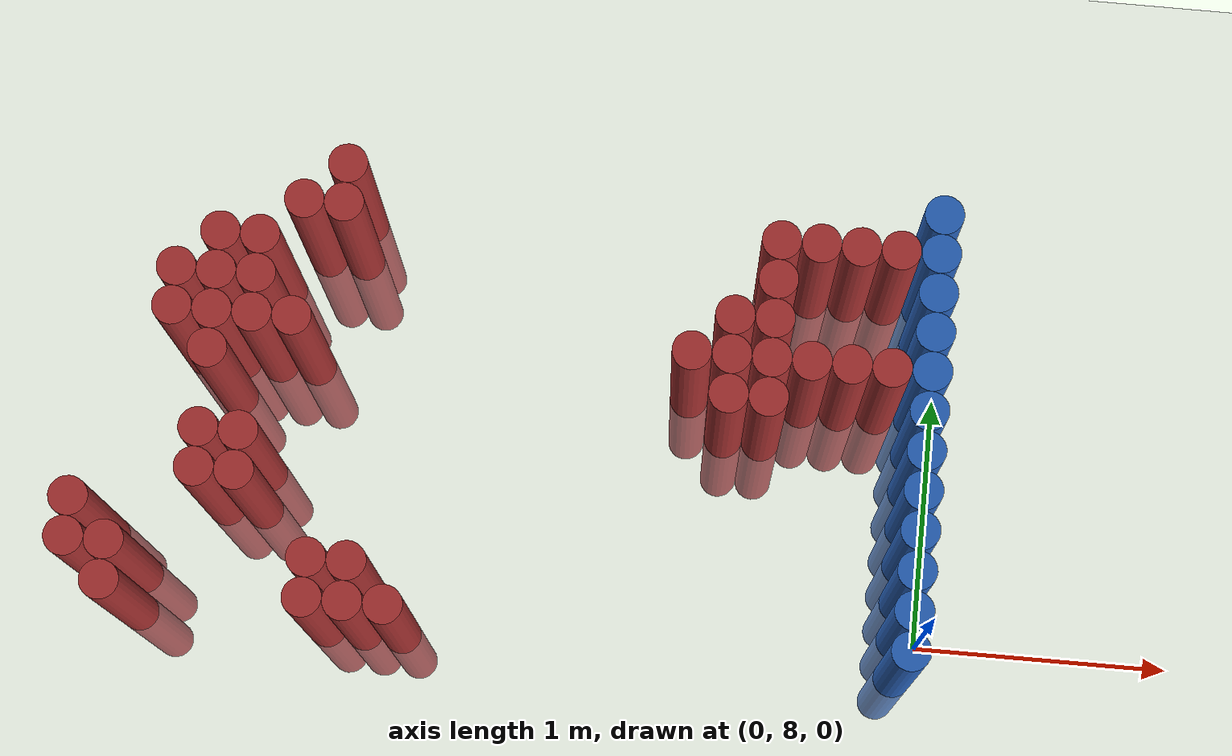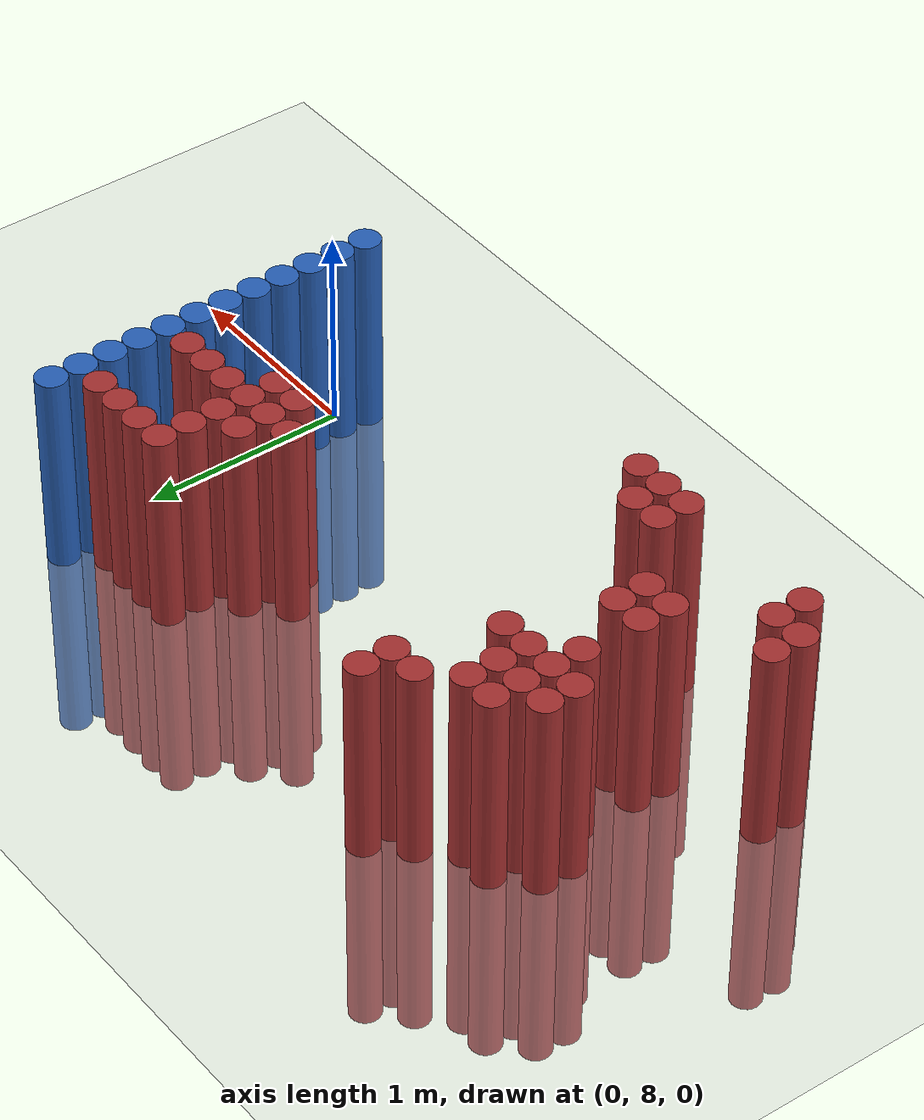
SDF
<sdf version="1.6">
 <world name="default">
  <model name="ground_plane">
   <static>1</static>
   <link name="link">
    <collision name="collision">
     <geometry><plane><normal>0 0 1</normal><size>100 100</size></plane></geometry>
     <surface><friction><ode><mu>100</mu><mu2>50</mu2></ode></friction></surface>
    </collision>
    <visual name="visual">
     <cast_shadows>0</cast_shadows>
     <geometry><plane><normal>0 0 1</normal><size>100 100</size></plane></geometry>
     <material>
      <script><uri>file://media/materials/scripts/gazebo.material</uri><name>Gazebo/Grey</name></script>
     </material>
    </visual>
   </link>
  </model>
  <model name="unit_cylinder_162">
   <static>1</static>
   <pose>-3.225000 8.025000 0.000000 0.000000 0.000000 0.000000</pose>
   <link name="link">
    <inertial>
     <mass>1</mass>
     <inertia><ixx>0.145833</ixx><ixy>0</ixy><ixz>0</ixz><iyy>0.145833</iyy><iyz>0</iyz><izz>0.125</izz></inertia>
    </inertial>
    <collision name="collision">
     <geometry><cylinder><radius>0.075000</radius><length>2</length></cylinder></geometry>
    </collision>
    <visual name="visual">
     <geometry><cylinder><radius>0.075000</radius><length>2</length></cylinder></geometry>
     <material>
      <ambient>0.648000 0.192000 0.192000 1</ambient>
      <diffuse>0.648000 0.192000 0.192000 1</diffuse>
     </material>
     <material>
      <script><name>Gazebo/Grey</name><uri>file://media/materials/scripts/gazebo.material</uri></script>
     </material>
    </visual>
   </link>
  </model>
  <model name="unit_cylinder_163">
   <static>1</static>
   <pose>-3.225000 8.175000 0.000000 0.000000 0.000000 0.000000</pose>
   <link name="link">
    <inertial>
     <mass>1</mass>
     <inertia><ixx>0.145833</ixx><ixy>0</ixy><ixz>0</ixz><iyy>0.145833</iyy><iyz>0</iyz><izz>0.125</izz></inertia>
    </inertial>
    <collision name="collision">
     <geometry><cylinder><radius>0.075000</radius><length>2</length></cylinder></geometry>
    </collision>
    <visual name="visual">
     <geometry><cylinder><radius>0.075000</radius><length>2</length></cylinder></geometry>
     <material>
      <ambient>0.648000 0.192000 0.192000 1</ambient>
      <diffuse>0.648000 0.192000 0.192000 1</diffuse>
     </material>
     <material>
      <script><name>Gazebo/Grey</name><uri>file://media/materials/scripts/gazebo.material</uri></script>
     </material>
    </visual>
   </link>
  </model>
  <model name="unit_cylinder_169">
   <static>1</static>
   <pose>-3.075000 7.875000 0.000000 0.000000 0.000000 0.000000</pose>
   <link name="link">
    <inertial>
     <mass>1</mass>
     <inertia><ixx>0.145833</ixx><ixy>0</ixy><ixz>0</ixz><iyy>0.145833</iyy><iyz>0</iyz><izz>0.125</izz></inertia>
    </inertial>
    <collision name="collision">
     <geometry><cylinder><radius>0.075000</radius><length>2</length></cylinder></geometry>
    </collision>
    <visual name="visual">
     <geometry><cylinder><radius>0.075000</radius><length>2</length></cylinder></geometry>
     <material>
      <ambient>0.648000 0.192000 0.192000 1</ambient>
      <diffuse>0.648000 0.192000 0.192000 1</diffuse>
     </material>
     <material>
      <script><name>Gazebo/Grey</name><uri>file://media/materials/scripts/gazebo.material</uri></script>
     </material>
    </visual>
   </link>
  </model>
  <model name="unit_cylinder_170">
   <static>1</static>
   <pose>-3.075000 8.025000 0.000000 0.000000 0.000000 0.000000</pose>
   <link name="link">
    <inertial>
     <mass>1</mass>
     <inertia><ixx>0.145833</ixx><ixy>0</ixy><ixz>0</ixz><iyy>0.145833</iyy><iyz>0</iyz><izz>0.125</izz></inertia>
    </inertial>
    <collision name="collision">
     <geometry><cylinder><radius>0.075000</radius><length>2</length></cylinder></geometry>
    </collision>
    <visual name="visual">
     <geometry><cylinder><radius>0.075000</radius><length>2</length></cylinder></geometry>
     <material>
      <ambient>0.648000 0.192000 0.192000 1</ambient>
      <diffuse>0.648000 0.192000 0.192000 1</diffuse>
     </material>
     <material>
      <script><name>Gazebo/Grey</name><uri>file://media/materials/scripts/gazebo.material</uri></script>
     </material>
    </visual>
   </link>
  </model>
  <model name="unit_cylinder_175">
   <static>1</static>
   <pose>-2.925000 8.925000 0.000000 0.000000 0.000000 0.000000</pose>
   <link name="link">
    <inertial>
     <mass>1</mass>
     <inertia><ixx>0.145833</ixx><ixy>0</ixy><ixz>0</ixz><iyy>0.145833</iyy><iyz>0</iyz><izz>0.125</izz></inertia>
    </inertial>
    <collision name="collision">
     <geometry><cylinder><radius>0.075000</radius><length>2</length></cylinder></geometry>
    </collision>
    <visual name="visual">
     <geometry><cylinder><radius>0.075000</radius><length>2</length></cylinder></geometry>
     <material>
      <ambient>0.648000 0.192000 0.192000 1</ambient>
      <diffuse>0.648000 0.192000 0.192000 1</diffuse>
     </material>
     <material>
      <script><name>Gazebo/Grey</name><uri>file://media/materials/scripts/gazebo.material</uri></script>
     </material>
    </visual>
   </link>
  </model>
  <model name="unit_cylinder_176">
   <static>1</static>
   <pose>-2.925000 9.075000 0.000000 0.000000 0.000000 0.000000</pose>
   <link name="link">
    <inertial>
     <mass>1</mass>
     <inertia><ixx>0.145833</ixx><ixy>0</ixy><ixz>0</ixz><iyy>0.145833</iyy><iyz>0</iyz><izz>0.125</izz></inertia>
    </inertial>
    <collision name="collision">
     <geometry><cylinder><radius>0.075000</radius><length>2</length></cylinder></geometry>
    </collision>
    <visual name="visual">
     <geometry><cylinder><radius>0.075000</radius><length>2</length></cylinder></geometry>
     <material>
      <ambient>0.648000 0.192000 0.192000 1</ambient>
      <diffuse>0.648000 0.192000 0.192000 1</diffuse>
     </material>
     <material>
      <script><name>Gazebo/Grey</name><uri>file://media/materials/scripts/gazebo.material</uri></script>
     </material>
    </visual>
   </link>
  </model>
  <model name="unit_cylinder_178">
   <static>1</static>
   <pose>-2.775000 8.325000 0.000000 0.000000 0.000000 0.000000</pose>
   <link name="link">
    <inertial>
     <mass>1</mass>
     <inertia><ixx>0.145833</ixx><ixy>0</ixy><ixz>0</ixz><iyy>0.145833</iyy><iyz>0</iyz><izz>0.125</izz></inertia>
    </inertial>
    <collision name="collision">
     <geometry><cylinder><radius>0.075000</radius><length>2</length></cylinder></geometry>
    </collision>
    <visual name="visual">
     <geometry><cylinder><radius>0.075000</radius><length>2</length></cylinder></geometry>
     <material>
      <ambient>0.648000 0.192000 0.192000 1</ambient>
      <diffuse>0.648000 0.192000 0.192000 1</diffuse>
     </material>
     <material>
      <script><name>Gazebo/Grey</name><uri>file://media/materials/scripts/gazebo.material</uri></script>
     </material>
    </visual>
   </link>
  </model>
  <model name="unit_cylinder_179">
   <static>1</static>
   <pose>-2.775000 8.475000 0.000000 0.000000 0.000000 0.000000</pose>
   <link name="link">
    <inertial>
     <mass>1</mass>
     <inertia><ixx>0.145833</ixx><ixy>0</ixy><ixz>0</ixz><iyy>0.145833</iyy><iyz>0</iyz><izz>0.125</izz></inertia>
    </inertial>
    <collision name="collision">
     <geometry><cylinder><radius>0.075000</radius><length>2</length></cylinder></geometry>
    </collision>
    <visual name="visual">
     <geometry><cylinder><radius>0.075000</radius><length>2</length></cylinder></geometry>
     <material>
      <ambient>0.648000 0.192000 0.192000 1</ambient>
      <diffuse>0.648000 0.192000 0.192000 1</diffuse>
     </material>
     <material>
      <script><name>Gazebo/Grey</name><uri>file://media/materials/scripts/gazebo.material</uri></script>
     </material>
    </visual>
   </link>
  </model>
  <model name="unit_cylinder_180">
   <static>1</static>
   <pose>-2.775000 8.775000 0.000000 0.000000 0.000000 0.000000</pose>
   <link name="link">
    <inertial>
     <mass>1</mass>
     <inertia><ixx>0.145833</ixx><ixy>0</ixy><ixz>0</ixz><iyy>0.145833</iyy><iyz>0</iyz><izz>0.125</izz></inertia>
    </inertial>
    <collision name="collision">
     <geometry><cylinder><radius>0.075000</radius><length>2</length></cylinder></geometry>
    </collision>
    <visual name="visual">
     <geometry><cylinder><radius>0.075000</radius><length>2</length></cylinder></geometry>
     <material>
      <ambient>0.648000 0.192000 0.192000 1</ambient>
      <diffuse>0.648000 0.192000 0.192000 1</diffuse>
     </material>
     <material>
      <script><name>Gazebo/Grey</name><uri>file://media/materials/scripts/gazebo.material</uri></script>
     </material>
    </visual>
   </link>
  </model>
  <model name="unit_cylinder_181">
   <static>1</static>
   <pose>-2.775000 8.925000 0.000000 0.000000 0.000000 0.000000</pose>
   <link name="link">
    <inertial>
     <mass>1</mass>
     <inertia><ixx>0.145833</ixx><ixy>0</ixy><ixz>0</ixz><iyy>0.145833</iyy><iyz>0</iyz><izz>0.125</izz></inertia>
    </inertial>
    <collision name="collision">
     <geometry><cylinder><radius>0.075000</radius><length>2</length></cylinder></geometry>
    </collision>
    <visual name="visual">
     <geometry><cylinder><radius>0.075000</radius><length>2</length></cylinder></geometry>
     <material>
      <ambient>0.648000 0.192000 0.192000 1</ambient>
      <diffuse>0.648000 0.192000 0.192000 1</diffuse>
     </material>
     <material>
      <script><name>Gazebo/Grey</name><uri>file://media/materials/scripts/gazebo.material</uri></script>
     </material>
    </visual>
   </link>
  </model>
  <model name="unit_cylinder_182">
   <static>1</static>
   <pose>-2.775000 9.075000 0.000000 0.000000 0.000000 0.000000</pose>
   <link name="link">
    <inertial>
     <mass>1</mass>
     <inertia><ixx>0.145833</ixx><ixy>0</ixy><ixz>0</ixz><iyy>0.145833</iyy><iyz>0</iyz><izz>0.125</izz></inertia>
    </inertial>
    <collision name="collision">
     <geometry><cylinder><radius>0.075000</radius><length>2</length></cylinder></geometry>
    </collision>
    <visual name="visual">
     <geometry><cylinder><radius>0.075000</radius><length>2</length></cylinder></geometry>
     <material>
      <ambient>0.648000 0.192000 0.192000 1</ambient>
      <diffuse>0.648000 0.192000 0.192000 1</diffuse>
     </material>
     <material>
      <script><name>Gazebo/Grey</name><uri>file://media/materials/scripts/gazebo.material</uri></script>
     </material>
    </visual>
   </link>
  </model>
  <model name="unit_cylinder_183">
   <static>1</static>
   <pose>-2.775000 9.225000 0.000000 0.000000 0.000000 0.000000</pose>
   <link name="link">
    <inertial>
     <mass>1</mass>
     <inertia><ixx>0.145833</ixx><ixy>0</ixy><ixz>0</ixz><iyy>0.145833</iyy><iyz>0</iyz><izz>0.125</izz></inertia>
    </inertial>
    <collision name="collision">
     <geometry><cylinder><radius>0.075000</radius><length>2</length></cylinder></geometry>
    </collision>
    <visual name="visual">
     <geometry><cylinder><radius>0.075000</radius><length>2</length></cylinder></geometry>
     <material>
      <ambient>0.648000 0.192000 0.192000 1</ambient>
      <diffuse>0.648000 0.192000 0.192000 1</diffuse>
     </material>
     <material>
      <script><name>Gazebo/Grey</name><uri>file://media/materials/scripts/gazebo.material</uri></script>
     </material>
    </visual>
   </link>
  </model>
  <model name="unit_cylinder_186">
   <static>1</static>
   <pose>-2.625000 8.325000 0.000000 0.000000 0.000000 0.000000</pose>
   <link name="link">
    <inertial>
     <mass>1</mass>
     <inertia><ixx>0.145833</ixx><ixy>0</ixy><ixz>0</ixz><iyy>0.145833</iyy><iyz>0</iyz><izz>0.125</izz></inertia>
    </inertial>
    <collision name="collision">
     <geometry><cylinder><radius>0.075000</radius><length>2</length></cylinder></geometry>
    </collision>
    <visual name="visual">
     <geometry><cylinder><radius>0.075000</radius><length>2</length></cylinder></geometry>
     <material>
      <ambient>0.648000 0.192000 0.192000 1</ambient>
      <diffuse>0.648000 0.192000 0.192000 1</diffuse>
     </material>
     <material>
      <script><name>Gazebo/Grey</name><uri>file://media/materials/scripts/gazebo.material</uri></script>
     </material>
    </visual>
   </link>
  </model>
  <model name="unit_cylinder_187">
   <static>1</static>
   <pose>-2.625000 8.475000 0.000000 0.000000 0.000000 0.000000</pose>
   <link name="link">
    <inertial>
     <mass>1</mass>
     <inertia><ixx>0.145833</ixx><ixy>0</ixy><ixz>0</ixz><iyy>0.145833</iyy><iyz>0</iyz><izz>0.125</izz></inertia>
    </inertial>
    <collision name="collision">
     <geometry><cylinder><radius>0.075000</radius><length>2</length></cylinder></geometry>
    </collision>
    <visual name="visual">
     <geometry><cylinder><radius>0.075000</radius><length>2</length></cylinder></geometry>
     <material>
      <ambient>0.648000 0.192000 0.192000 1</ambient>
      <diffuse>0.648000 0.192000 0.192000 1</diffuse>
     </material>
     <material>
      <script><name>Gazebo/Grey</name><uri>file://media/materials/scripts/gazebo.material</uri></script>
     </material>
    </visual>
   </link>
  </model>
  <model name="unit_cylinder_188">
   <static>1</static>
   <pose>-2.625000 8.925000 0.000000 0.000000 0.000000 0.000000</pose>
   <link name="link">
    <inertial>
     <mass>1</mass>
     <inertia><ixx>0.145833</ixx><ixy>0</ixy><ixz>0</ixz><iyy>0.145833</iyy><iyz>0</iyz><izz>0.125</izz></inertia>
    </inertial>
    <collision name="collision">
     <geometry><cylinder><radius>0.075000</radius><length>2</length></cylinder></geometry>
    </collision>
    <visual name="visual">
     <geometry><cylinder><radius>0.075000</radius><length>2</length></cylinder></geometry>
     <material>
      <ambient>0.648000 0.192000 0.192000 1</ambient>
      <diffuse>0.648000 0.192000 0.192000 1</diffuse>
     </material>
     <material>
      <script><name>Gazebo/Grey</name><uri>file://media/materials/scripts/gazebo.material</uri></script>
     </material>
    </visual>
   </link>
  </model>
  <model name="unit_cylinder_189">
   <static>1</static>
   <pose>-2.625000 9.075000 0.000000 0.000000 0.000000 0.000000</pose>
   <link name="link">
    <inertial>
     <mass>1</mass>
     <inertia><ixx>0.145833</ixx><ixy>0</ixy><ixz>0</ixz><iyy>0.145833</iyy><iyz>0</iyz><izz>0.125</izz></inertia>
    </inertial>
    <collision name="collision">
     <geometry><cylinder><radius>0.075000</radius><length>2</length></cylinder></geometry>
    </collision>
    <visual name="visual">
     <geometry><cylinder><radius>0.075000</radius><length>2</length></cylinder></geometry>
     <material>
      <ambient>0.648000 0.192000 0.192000 1</ambient>
      <diffuse>0.648000 0.192000 0.192000 1</diffuse>
     </material>
     <material>
      <script><name>Gazebo/Grey</name><uri>file://media/materials/scripts/gazebo.material</uri></script>
     </material>
    </visual>
   </link>
  </model>
  <model name="unit_cylinder_190">
   <static>1</static>
   <pose>-2.625000 9.225000 0.000000 0.000000 0.000000 0.000000</pose>
   <link name="link">
    <inertial>
     <mass>1</mass>
     <inertia><ixx>0.145833</ixx><ixy>0</ixy><ixz>0</ixz><iyy>0.145833</iyy><iyz>0</iyz><izz>0.125</izz></inertia>
    </inertial>
    <collision name="collision">
     <geometry><cylinder><radius>0.075000</radius><length>2</length></cylinder></geometry>
    </collision>
    <visual name="visual">
     <geometry><cylinder><radius>0.075000</radius><length>2</length></cylinder></geometry>
     <material>
      <ambient>0.648000 0.192000 0.192000 1</ambient>
      <diffuse>0.648000 0.192000 0.192000 1</diffuse>
     </material>
     <material>
      <script><name>Gazebo/Grey</name><uri>file://media/materials/scripts/gazebo.material</uri></script>
     </material>
    </visual>
   </link>
  </model>
  <model name="unit_cylinder_193">
   <static>1</static>
   <pose>-2.475000 8.925000 0.000000 0.000000 0.000000 0.000000</pose>
   <link name="link">
    <inertial>
     <mass>1</mass>
     <inertia><ixx>0.145833</ixx><ixy>0</ixy><ixz>0</ixz><iyy>0.145833</iyy><iyz>0</iyz><izz>0.125</izz></inertia>
    </inertial>
    <collision name="collision">
     <geometry><cylinder><radius>0.075000</radius><length>2</length></cylinder></geometry>
    </collision>
    <visual name="visual">
     <geometry><cylinder><radius>0.075000</radius><length>2</length></cylinder></geometry>
     <material>
      <ambient>0.648000 0.192000 0.192000 1</ambient>
      <diffuse>0.648000 0.192000 0.192000 1</diffuse>
     </material>
     <material>
      <script><name>Gazebo/Grey</name><uri>file://media/materials/scripts/gazebo.material</uri></script>
     </material>
    </visual>
   </link>
  </model>
  <model name="unit_cylinder_194">
   <static>1</static>
   <pose>-2.475000 9.375000 0.000000 0.000000 0.000000 0.000000</pose>
   <link name="link">
    <inertial>
     <mass>1</mass>
     <inertia><ixx>0.145833</ixx><ixy>0</ixy><ixz>0</ixz><iyy>0.145833</iyy><iyz>0</iyz><izz>0.125</izz></inertia>
    </inertial>
    <collision name="collision">
     <geometry><cylinder><radius>0.075000</radius><length>2</length></cylinder></geometry>
    </collision>
    <visual name="visual">
     <geometry><cylinder><radius>0.075000</radius><length>2</length></cylinder></geometry>
     <material>
      <ambient>0.648000 0.192000 0.192000 1</ambient>
      <diffuse>0.648000 0.192000 0.192000 1</diffuse>
     </material>
     <material>
      <script><name>Gazebo/Grey</name><uri>file://media/materials/scripts/gazebo.material</uri></script>
     </material>
    </visual>
   </link>
  </model>
  <model name="unit_cylinder_197">
   <static>1</static>
   <pose>-2.325000 7.875000 0.000000 0.000000 0.000000 0.000000</pose>
   <link name="link">
    <inertial>
     <mass>1</mass>
     <inertia><ixx>0.145833</ixx><ixy>0</ixy><ixz>0</ixz><iyy>0.145833</iyy><iyz>0</iyz><izz>0.125</izz></inertia>
    </inertial>
    <collision name="collision">
     <geometry><cylinder><radius>0.075000</radius><length>2</length></cylinder></geometry>
    </collision>
    <visual name="visual">
     <geometry><cylinder><radius>0.075000</radius><length>2</length></cylinder></geometry>
     <material>
      <ambient>0.648000 0.192000 0.192000 1</ambient>
      <diffuse>0.648000 0.192000 0.192000 1</diffuse>
     </material>
     <material>
      <script><name>Gazebo/Grey</name><uri>file://media/materials/scripts/gazebo.material</uri></script>
     </material>
    </visual>
   </link>
  </model>
  <model name="unit_cylinder_198">
   <static>1</static>
   <pose>-2.325000 8.025000 0.000000 0.000000 0.000000 0.000000</pose>
   <link name="link">
    <inertial>
     <mass>1</mass>
     <inertia><ixx>0.145833</ixx><ixy>0</ixy><ixz>0</ixz><iyy>0.145833</iyy><iyz>0</iyz><izz>0.125</izz></inertia>
    </inertial>
    <collision name="collision">
     <geometry><cylinder><radius>0.075000</radius><length>2</length></cylinder></geometry>
    </collision>
    <visual name="visual">
     <geometry><cylinder><radius>0.075000</radius><length>2</length></cylinder></geometry>
     <material>
      <ambient>0.648000 0.192000 0.192000 1</ambient>
      <diffuse>0.648000 0.192000 0.192000 1</diffuse>
     </material>
     <material>
      <script><name>Gazebo/Grey</name><uri>file://media/materials/scripts/gazebo.material</uri></script>
     </material>
    </visual>
   </link>
  </model>
  <model name="unit_cylinder_199">
   <static>1</static>
   <pose>-2.325000 9.375000 0.000000 0.000000 0.000000 0.000000</pose>
   <link name="link">
    <inertial>
     <mass>1</mass>
     <inertia><ixx>0.145833</ixx><ixy>0</ixy><ixz>0</ixz><iyy>0.145833</iyy><iyz>0</iyz><izz>0.125</izz></inertia>
    </inertial>
    <collision name="collision">
     <geometry><cylinder><radius>0.075000</radius><length>2</length></cylinder></geometry>
    </collision>
    <visual name="visual">
     <geometry><cylinder><radius>0.075000</radius><length>2</length></cylinder></geometry>
     <material>
      <ambient>0.648000 0.192000 0.192000 1</ambient>
      <diffuse>0.648000 0.192000 0.192000 1</diffuse>
     </material>
     <material>
      <script><name>Gazebo/Grey</name><uri>file://media/materials/scripts/gazebo.material</uri></script>
     </material>
    </visual>
   </link>
  </model>
  <model name="unit_cylinder_200">
   <static>1</static>
   <pose>-2.325000 9.525000 0.000000 0.000000 0.000000 0.000000</pose>
   <link name="link">
    <inertial>
     <mass>1</mass>
     <inertia><ixx>0.145833</ixx><ixy>0</ixy><ixz>0</ixz><iyy>0.145833</iyy><iyz>0</iyz><izz>0.125</izz></inertia>
    </inertial>
    <collision name="collision">
     <geometry><cylinder><radius>0.075000</radius><length>2</length></cylinder></geometry>
    </collision>
    <visual name="visual">
     <geometry><cylinder><radius>0.075000</radius><length>2</length></cylinder></geometry>
     <material>
      <ambient>0.648000 0.192000 0.192000 1</ambient>
      <diffuse>0.648000 0.192000 0.192000 1</diffuse>
     </material>
     <material>
      <script><name>Gazebo/Grey</name><uri>file://media/materials/scripts/gazebo.material</uri></script>
     </material>
    </visual>
   </link>
  </model>
  <model name="unit_cylinder_202">
   <static>1</static>
   <pose>-2.175000 7.875000 0.000000 0.000000 0.000000 0.000000</pose>
   <link name="link">
    <inertial>
     <mass>1</mass>
     <inertia><ixx>0.145833</ixx><ixy>0</ixy><ixz>0</ixz><iyy>0.145833</iyy><iyz>0</iyz><izz>0.125</izz></inertia>
    </inertial>
    <collision name="collision">
     <geometry><cylinder><radius>0.075000</radius><length>2</length></cylinder></geometry>
    </collision>
    <visual name="visual">
     <geometry><cylinder><radius>0.075000</radius><length>2</length></cylinder></geometry>
     <material>
      <ambient>0.648000 0.192000 0.192000 1</ambient>
      <diffuse>0.648000 0.192000 0.192000 1</diffuse>
     </material>
     <material>
      <script><name>Gazebo/Grey</name><uri>file://media/materials/scripts/gazebo.material</uri></script>
     </material>
    </visual>
   </link>
  </model>
  <model name="unit_cylinder_203">
   <static>1</static>
   <pose>-2.175000 8.025000 0.000000 0.000000 0.000000 0.000000</pose>
   <link name="link">
    <inertial>
     <mass>1</mass>
     <inertia><ixx>0.145833</ixx><ixy>0</ixy><ixz>0</ixz><iyy>0.145833</iyy><iyz>0</iyz><izz>0.125</izz></inertia>
    </inertial>
    <collision name="collision">
     <geometry><cylinder><radius>0.075000</radius><length>2</length></cylinder></geometry>
    </collision>
    <visual name="visual">
     <geometry><cylinder><radius>0.075000</radius><length>2</length></cylinder></geometry>
     <material>
      <ambient>0.648000 0.192000 0.192000 1</ambient>
      <diffuse>0.648000 0.192000 0.192000 1</diffuse>
     </material>
     <material>
      <script><name>Gazebo/Grey</name><uri>file://media/materials/scripts/gazebo.material</uri></script>
     </material>
    </visual>
   </link>
  </model>
  <model name="unit_cylinder_204">
   <static>1</static>
   <pose>-2.025000 7.875000 0.000000 0.000000 0.000000 0.000000</pose>
   <link name="link">
    <inertial>
     <mass>1</mass>
     <inertia><ixx>0.145833</ixx><ixy>0</ixy><ixz>0</ixz><iyy>0.145833</iyy><iyz>0</iyz><izz>0.125</izz></inertia>
    </inertial>
    <collision name="collision">
     <geometry><cylinder><radius>0.075000</radius><length>2</length></cylinder></geometry>
    </collision>
    <visual name="visual">
     <geometry><cylinder><radius>0.075000</radius><length>2</length></cylinder></geometry>
     <material>
      <ambient>0.648000 0.192000 0.192000 1</ambient>
      <diffuse>0.648000 0.192000 0.192000 1</diffuse>
     </material>
     <material>
      <script><name>Gazebo/Grey</name><uri>file://media/materials/scripts/gazebo.material</uri></script>
     </material>
    </visual>
   </link>
  </model>
  <model name="unit_cylinder_208">
   <static>1</static>
   <pose>-0.975000 8.925000 0.000000 0.000000 0.000000 0.000000</pose>
   <link name="link">
    <inertial>
     <mass>1</mass>
     <inertia><ixx>0.145833</ixx><ixy>0</ixy><ixz>0</ixz><iyy>0.145833</iyy><iyz>0</iyz><izz>0.125</izz></inertia>
    </inertial>
    <collision name="collision">
     <geometry><cylinder><radius>0.075000</radius><length>2</length></cylinder></geometry>
    </collision>
    <visual name="visual">
     <geometry><cylinder><radius>0.075000</radius><length>2</length></cylinder></geometry>
     <material>
      <ambient>0.648000 0.192000 0.192000 1</ambient>
      <diffuse>0.648000 0.192000 0.192000 1</diffuse>
     </material>
     <material>
      <script><name>Gazebo/Grey</name><uri>file://media/materials/scripts/gazebo.material</uri></script>
     </material>
    </visual>
   </link>
  </model>
  <model name="unit_cylinder_211">
   <static>1</static>
   <pose>-0.825000 8.775000 0.000000 0.000000 0.000000 0.000000</pose>
   <link name="link">
    <inertial>
     <mass>1</mass>
     <inertia><ixx>0.145833</ixx><ixy>0</ixy><ixz>0</ixz><iyy>0.145833</iyy><iyz>0</iyz><izz>0.125</izz></inertia>
    </inertial>
    <collision name="collision">
     <geometry><cylinder><radius>0.075000</radius><length>2</length></cylinder></geometry>
    </collision>
    <visual name="visual">
     <geometry><cylinder><radius>0.075000</radius><length>2</length></cylinder></geometry>
     <material>
      <ambient>0.648000 0.192000 0.192000 1</ambient>
      <diffuse>0.648000 0.192000 0.192000 1</diffuse>
     </material>
     <material>
      <script><name>Gazebo/Grey</name><uri>file://media/materials/scripts/gazebo.material</uri></script>
     </material>
    </visual>
   </link>
  </model>
  <model name="unit_cylinder_212">
   <static>1</static>
   <pose>-0.825000 8.925000 0.000000 0.000000 0.000000 0.000000</pose>
   <link name="link">
    <inertial>
     <mass>1</mass>
     <inertia><ixx>0.145833</ixx><ixy>0</ixy><ixz>0</ixz><iyy>0.145833</iyy><iyz>0</iyz><izz>0.125</izz></inertia>
    </inertial>
    <collision name="collision">
     <geometry><cylinder><radius>0.075000</radius><length>2</length></cylinder></geometry>
    </collision>
    <visual name="visual">
     <geometry><cylinder><radius>0.075000</radius><length>2</length></cylinder></geometry>
     <material>
      <ambient>0.648000 0.192000 0.192000 1</ambient>
      <diffuse>0.648000 0.192000 0.192000 1</diffuse>
     </material>
     <material>
      <script><name>Gazebo/Grey</name><uri>file://media/materials/scripts/gazebo.material</uri></script>
     </material>
    </visual>
   </link>
  </model>
  <model name="unit_cylinder_213">
   <static>1</static>
   <pose>-0.825000 9.075000 0.000000 0.000000 0.000000 0.000000</pose>
   <link name="link">
    <inertial>
     <mass>1</mass>
     <inertia><ixx>0.145833</ixx><ixy>0</ixy><ixz>0</ixz><iyy>0.145833</iyy><iyz>0</iyz><izz>0.125</izz></inertia>
    </inertial>
    <collision name="collision">
     <geometry><cylinder><radius>0.075000</radius><length>2</length></cylinder></geometry>
    </collision>
    <visual name="visual">
     <geometry><cylinder><radius>0.075000</radius><length>2</length></cylinder></geometry>
     <material>
      <ambient>0.648000 0.192000 0.192000 1</ambient>
      <diffuse>0.648000 0.192000 0.192000 1</diffuse>
     </material>
     <material>
      <script><name>Gazebo/Grey</name><uri>file://media/materials/scripts/gazebo.material</uri></script>
     </material>
    </visual>
   </link>
  </model>
  <model name="unit_cylinder_214">
   <static>1</static>
   <pose>-0.675000 8.775000 0.000000 0.000000 0.000000 0.000000</pose>
   <link name="link">
    <inertial>
     <mass>1</mass>
     <inertia><ixx>0.145833</ixx><ixy>0</ixy><ixz>0</ixz><iyy>0.145833</iyy><iyz>0</iyz><izz>0.125</izz></inertia>
    </inertial>
    <collision name="collision">
     <geometry><cylinder><radius>0.075000</radius><length>2</length></cylinder></geometry>
    </collision>
    <visual name="visual">
     <geometry><cylinder><radius>0.075000</radius><length>2</length></cylinder></geometry>
     <material>
      <ambient>0.648000 0.192000 0.192000 1</ambient>
      <diffuse>0.648000 0.192000 0.192000 1</diffuse>
     </material>
     <material>
      <script><name>Gazebo/Grey</name><uri>file://media/materials/scripts/gazebo.material</uri></script>
     </material>
    </visual>
   </link>
  </model>
  <model name="unit_cylinder_215">
   <static>1</static>
   <pose>-0.675000 8.925000 0.000000 0.000000 0.000000 0.000000</pose>
   <link name="link">
    <inertial>
     <mass>1</mass>
     <inertia><ixx>0.145833</ixx><ixy>0</ixy><ixz>0</ixz><iyy>0.145833</iyy><iyz>0</iyz><izz>0.125</izz></inertia>
    </inertial>
    <collision name="collision">
     <geometry><cylinder><radius>0.075000</radius><length>2</length></cylinder></geometry>
    </collision>
    <visual name="visual">
     <geometry><cylinder><radius>0.075000</radius><length>2</length></cylinder></geometry>
     <material>
      <ambient>0.648000 0.192000 0.192000 1</ambient>
      <diffuse>0.648000 0.192000 0.192000 1</diffuse>
     </material>
     <material>
      <script><name>Gazebo/Grey</name><uri>file://media/materials/scripts/gazebo.material</uri></script>
     </material>
    </visual>
   </link>
  </model>
  <model name="unit_cylinder_216">
   <static>1</static>
   <pose>-0.675000 9.075000 0.000000 0.000000 0.000000 0.000000</pose>
   <link name="link">
    <inertial>
     <mass>1</mass>
     <inertia><ixx>0.145833</ixx><ixy>0</ixy><ixz>0</ixz><iyy>0.145833</iyy><iyz>0</iyz><izz>0.125</izz></inertia>
    </inertial>
    <collision name="collision">
     <geometry><cylinder><radius>0.075000</radius><length>2</length></cylinder></geometry>
    </collision>
    <visual name="visual">
     <geometry><cylinder><radius>0.075000</radius><length>2</length></cylinder></geometry>
     <material>
      <ambient>0.648000 0.192000 0.192000 1</ambient>
      <diffuse>0.648000 0.192000 0.192000 1</diffuse>
     </material>
     <material>
      <script><name>Gazebo/Grey</name><uri>file://media/materials/scripts/gazebo.material</uri></script>
     </material>
    </visual>
   </link>
  </model>
  <model name="unit_cylinder_217">
   <static>1</static>
   <pose>-0.675000 9.225000 0.000000 0.000000 0.000000 0.000000</pose>
   <link name="link">
    <inertial>
     <mass>1</mass>
     <inertia><ixx>0.145833</ixx><ixy>0</ixy><ixz>0</ixz><iyy>0.145833</iyy><iyz>0</iyz><izz>0.125</izz></inertia>
    </inertial>
    <collision name="collision">
     <geometry><cylinder><radius>0.075000</radius><length>2</length></cylinder></geometry>
    </collision>
    <visual name="visual">
     <geometry><cylinder><radius>0.075000</radius><length>2</length></cylinder></geometry>
     <material>
      <ambient>0.648000 0.192000 0.192000 1</ambient>
      <diffuse>0.648000 0.192000 0.192000 1</diffuse>
     </material>
     <material>
      <script><name>Gazebo/Grey</name><uri>file://media/materials/scripts/gazebo.material</uri></script>
     </material>
    </visual>
   </link>
  </model>
  <model name="unit_cylinder_218">
   <static>1</static>
   <pose>-0.675000 9.375000 0.000000 0.000000 0.000000 0.000000</pose>
   <link name="link">
    <inertial>
     <mass>1</mass>
     <inertia><ixx>0.145833</ixx><ixy>0</ixy><ixz>0</ixz><iyy>0.145833</iyy><iyz>0</iyz><izz>0.125</izz></inertia>
    </inertial>
    <collision name="collision">
     <geometry><cylinder><radius>0.075000</radius><length>2</length></cylinder></geometry>
    </collision>
    <visual name="visual">
     <geometry><cylinder><radius>0.075000</radius><length>2</length></cylinder></geometry>
     <material>
      <ambient>0.648000 0.192000 0.192000 1</ambient>
      <diffuse>0.648000 0.192000 0.192000 1</diffuse>
     </material>
     <material>
      <script><name>Gazebo/Grey</name><uri>file://media/materials/scripts/gazebo.material</uri></script>
     </material>
    </visual>
   </link>
  </model>
  <model name="unit_cylinder_219">
   <static>1</static>
   <pose>-0.525000 8.925000 0.000000 0.000000 0.000000 0.000000</pose>
   <link name="link">
    <inertial>
     <mass>1</mass>
     <inertia><ixx>0.145833</ixx><ixy>0</ixy><ixz>0</ixz><iyy>0.145833</iyy><iyz>0</iyz><izz>0.125</izz></inertia>
    </inertial>
    <collision name="collision">
     <geometry><cylinder><radius>0.075000</radius><length>2</length></cylinder></geometry>
    </collision>
    <visual name="visual">
     <geometry><cylinder><radius>0.075000</radius><length>2</length></cylinder></geometry>
     <material>
      <ambient>0.648000 0.192000 0.192000 1</ambient>
      <diffuse>0.648000 0.192000 0.192000 1</diffuse>
     </material>
     <material>
      <script><name>Gazebo/Grey</name><uri>file://media/materials/scripts/gazebo.material</uri></script>
     </material>
    </visual>
   </link>
  </model>
  <model name="unit_cylinder_220">
   <static>1</static>
   <pose>-0.525000 9.375000 0.000000 0.000000 0.000000 0.000000</pose>
   <link name="link">
    <inertial>
     <mass>1</mass>
     <inertia><ixx>0.145833</ixx><ixy>0</ixy><ixz>0</ixz><iyy>0.145833</iyy><iyz>0</iyz><izz>0.125</izz></inertia>
    </inertial>
    <collision name="collision">
     <geometry><cylinder><radius>0.075000</radius><length>2</length></cylinder></geometry>
    </collision>
    <visual name="visual">
     <geometry><cylinder><radius>0.075000</radius><length>2</length></cylinder></geometry>
     <material>
      <ambient>0.648000 0.192000 0.192000 1</ambient>
      <diffuse>0.648000 0.192000 0.192000 1</diffuse>
     </material>
     <material>
      <script><name>Gazebo/Grey</name><uri>file://media/materials/scripts/gazebo.material</uri></script>
     </material>
    </visual>
   </link>
  </model>
  <model name="unit_cylinder_222">
   <static>1</static>
   <pose>-0.375000 8.925000 0.000000 0.000000 0.000000 0.000000</pose>
   <link name="link">
    <inertial>
     <mass>1</mass>
     <inertia><ixx>0.145833</ixx><ixy>0</ixy><ixz>0</ixz><iyy>0.145833</iyy><iyz>0</iyz><izz>0.125</izz></inertia>
    </inertial>
    <collision name="collision">
     <geometry><cylinder><radius>0.075000</radius><length>2</length></cylinder></geometry>
    </collision>
    <visual name="visual">
     <geometry><cylinder><radius>0.075000</radius><length>2</length></cylinder></geometry>
     <material>
      <ambient>0.648000 0.192000 0.192000 1</ambient>
      <diffuse>0.648000 0.192000 0.192000 1</diffuse>
     </material>
     <material>
      <script><name>Gazebo/Grey</name><uri>file://media/materials/scripts/gazebo.material</uri></script>
     </material>
    </visual>
   </link>
  </model>
  <model name="unit_cylinder_223">
   <static>1</static>
   <pose>-0.375000 9.375000 0.000000 0.000000 0.000000 0.000000</pose>
   <link name="link">
    <inertial>
     <mass>1</mass>
     <inertia><ixx>0.145833</ixx><ixy>0</ixy><ixz>0</ixz><iyy>0.145833</iyy><iyz>0</iyz><izz>0.125</izz></inertia>
    </inertial>
    <collision name="collision">
     <geometry><cylinder><radius>0.075000</radius><length>2</length></cylinder></geometry>
    </collision>
    <visual name="visual">
     <geometry><cylinder><radius>0.075000</radius><length>2</length></cylinder></geometry>
     <material>
      <ambient>0.648000 0.192000 0.192000 1</ambient>
      <diffuse>0.648000 0.192000 0.192000 1</diffuse>
     </material>
     <material>
      <script><name>Gazebo/Grey</name><uri>file://media/materials/scripts/gazebo.material</uri></script>
     </material>
    </visual>
   </link>
  </model>
  <model name="unit_cylinder_232">
   <static>1</static>
   <pose>-0.225000 8.925000 0.000000 0.000000 0.000000 0.000000</pose>
   <link name="link">
    <inertial>
     <mass>1</mass>
     <inertia><ixx>0.145833</ixx><ixy>0</ixy><ixz>0</ixz><iyy>0.145833</iyy><iyz>0</iyz><izz>0.125</izz></inertia>
    </inertial>
    <collision name="collision">
     <geometry><cylinder><radius>0.075000</radius><length>2</length></cylinder></geometry>
    </collision>
    <visual name="visual">
     <geometry><cylinder><radius>0.075000</radius><length>2</length></cylinder></geometry>
     <material>
      <ambient>0.648000 0.192000 0.192000 1</ambient>
      <diffuse>0.648000 0.192000 0.192000 1</diffuse>
     </material>
     <material>
      <script><name>Gazebo/Grey</name><uri>file://media/materials/scripts/gazebo.material</uri></script>
     </material>
    </visual>
   </link>
  </model>
  <model name="unit_cylinder_233">
   <static>1</static>
   <pose>-0.225000 9.375000 0.000000 0.000000 0.000000 0.000000</pose>
   <link name="link">
    <inertial>
     <mass>1</mass>
     <inertia><ixx>0.145833</ixx><ixy>0</ixy><ixz>0</ixz><iyy>0.145833</iyy><iyz>0</iyz><izz>0.125</izz></inertia>
    </inertial>
    <collision name="collision">
     <geometry><cylinder><radius>0.075000</radius><length>2</length></cylinder></geometry>
    </collision>
    <visual name="visual">
     <geometry><cylinder><radius>0.075000</radius><length>2</length></cylinder></geometry>
     <material>
      <ambient>0.648000 0.192000 0.192000 1</ambient>
      <diffuse>0.648000 0.192000 0.192000 1</diffuse>
     </material>
     <material>
      <script><name>Gazebo/Grey</name><uri>file://media/materials/scripts/gazebo.material</uri></script>
     </material>
    </visual>
   </link>
  </model>
  <model name="unit_cylinder_252">
   <static>1</static>
   <pose>-0.075000 7.875000 0.000000 0.000000 0.000000 0.000000</pose>
   <link name="link">
    <inertial>
     <mass>1</mass>
     <inertia><ixx>0.145833</ixx><ixy>0</ixy><ixz>0</ixz><iyy>0.145833</iyy><iyz>0</iyz><izz>0.125</izz></inertia>
    </inertial>
    <collision name="collision">
     <geometry><cylinder><radius>0.075000</radius><length>2</length></cylinder></geometry>
    </collision>
    <visual name="visual">
     <geometry><cylinder><radius>0.075000</radius><length>2</length></cylinder></geometry>
     <material>
      <ambient>0.152000 0.379000 0.720000 1</ambient>
      <diffuse>0.152000 0.379000 0.720000 1</diffuse>
     </material>
     <material>
      <script><name>Gazebo/Grey</name><uri>file://media/materials/scripts/gazebo.material</uri></script>
     </material>
    </visual>
   </link>
  </model>
  <model name="unit_cylinder_253">
   <static>1</static>
   <pose>-0.075000 8.025000 0.000000 0.000000 0.000000 0.000000</pose>
   <link name="link">
    <inertial>
     <mass>1</mass>
     <inertia><ixx>0.145833</ixx><ixy>0</ixy><ixz>0</ixz><iyy>0.145833</iyy><iyz>0</iyz><izz>0.125</izz></inertia>
    </inertial>
    <collision name="collision">
     <geometry><cylinder><radius>0.075000</radius><length>2</length></cylinder></geometry>
    </collision>
    <visual name="visual">
     <geometry><cylinder><radius>0.075000</radius><length>2</length></cylinder></geometry>
     <material>
      <ambient>0.152000 0.379000 0.720000 1</ambient>
      <diffuse>0.152000 0.379000 0.720000 1</diffuse>
     </material>
     <material>
      <script><name>Gazebo/Grey</name><uri>file://media/materials/scripts/gazebo.material</uri></script>
     </material>
    </visual>
   </link>
  </model>
  <model name="unit_cylinder_254">
   <static>1</static>
   <pose>-0.075000 8.175000 0.000000 0.000000 0.000000 0.000000</pose>
   <link name="link">
    <inertial>
     <mass>1</mass>
     <inertia><ixx>0.145833</ixx><ixy>0</ixy><ixz>0</ixz><iyy>0.145833</iyy><iyz>0</iyz><izz>0.125</izz></inertia>
    </inertial>
    <collision name="collision">
     <geometry><cylinder><radius>0.075000</radius><length>2</length></cylinder></geometry>
    </collision>
    <visual name="visual">
     <geometry><cylinder><radius>0.075000</radius><length>2</length></cylinder></geometry>
     <material>
      <ambient>0.152000 0.379000 0.720000 1</ambient>
      <diffuse>0.152000 0.379000 0.720000 1</diffuse>
     </material>
     <material>
      <script><name>Gazebo/Grey</name><uri>file://media/materials/scripts/gazebo.material</uri></script>
     </material>
    </visual>
   </link>
  </model>
  <model name="unit_cylinder_255">
   <static>1</static>
   <pose>-0.075000 8.325000 0.000000 0.000000 0.000000 0.000000</pose>
   <link name="link">
    <inertial>
     <mass>1</mass>
     <inertia><ixx>0.145833</ixx><ixy>0</ixy><ixz>0</ixz><iyy>0.145833</iyy><iyz>0</iyz><izz>0.125</izz></inertia>
    </inertial>
    <collision name="collision">
     <geometry><cylinder><radius>0.075000</radius><length>2</length></cylinder></geometry>
    </collision>
    <visual name="visual">
     <geometry><cylinder><radius>0.075000</radius><length>2</length></cylinder></geometry>
     <material>
      <ambient>0.152000 0.379000 0.720000 1</ambient>
      <diffuse>0.152000 0.379000 0.720000 1</diffuse>
     </material>
     <material>
      <script><name>Gazebo/Grey</name><uri>file://media/materials/scripts/gazebo.material</uri></script>
     </material>
    </visual>
   </link>
  </model>
  <model name="unit_cylinder_256">
   <static>1</static>
   <pose>-0.075000 8.475000 0.000000 0.000000 0.000000 0.000000</pose>
   <link name="link">
    <inertial>
     <mass>1</mass>
     <inertia><ixx>0.145833</ixx><ixy>0</ixy><ixz>0</ixz><iyy>0.145833</iyy><iyz>0</iyz><izz>0.125</izz></inertia>
    </inertial>
    <collision name="collision">
     <geometry><cylinder><radius>0.075000</radius><length>2</length></cylinder></geometry>
    </collision>
    <visual name="visual">
     <geometry><cylinder><radius>0.075000</radius><length>2</length></cylinder></geometry>
     <material>
      <ambient>0.152000 0.379000 0.720000 1</ambient>
      <diffuse>0.152000 0.379000 0.720000 1</diffuse>
     </material>
     <material>
      <script><name>Gazebo/Grey</name><uri>file://media/materials/scripts/gazebo.material</uri></script>
     </material>
    </visual>
   </link>
  </model>
  <model name="unit_cylinder_257">
   <static>1</static>
   <pose>-0.075000 8.625000 0.000000 0.000000 0.000000 0.000000</pose>
   <link name="link">
    <inertial>
     <mass>1</mass>
     <inertia><ixx>0.145833</ixx><ixy>0</ixy><ixz>0</ixz><iyy>0.145833</iyy><iyz>0</iyz><izz>0.125</izz></inertia>
    </inertial>
    <collision name="collision">
     <geometry><cylinder><radius>0.075000</radius><length>2</length></cylinder></geometry>
    </collision>
    <visual name="visual">
     <geometry><cylinder><radius>0.075000</radius><length>2</length></cylinder></geometry>
     <material>
      <ambient>0.152000 0.379000 0.720000 1</ambient>
      <diffuse>0.152000 0.379000 0.720000 1</diffuse>
     </material>
     <material>
      <script><name>Gazebo/Grey</name><uri>file://media/materials/scripts/gazebo.material</uri></script>
     </material>
    </visual>
   </link>
  </model>
  <model name="unit_cylinder_258">
   <static>1</static>
   <pose>-0.075000 8.775000 0.000000 0.000000 0.000000 0.000000</pose>
   <link name="link">
    <inertial>
     <mass>1</mass>
     <inertia><ixx>0.145833</ixx><ixy>0</ixy><ixz>0</ixz><iyy>0.145833</iyy><iyz>0</iyz><izz>0.125</izz></inertia>
    </inertial>
    <collision name="collision">
     <geometry><cylinder><radius>0.075000</radius><length>2</length></cylinder></geometry>
    </collision>
    <visual name="visual">
     <geometry><cylinder><radius>0.075000</radius><length>2</length></cylinder></geometry>
     <material>
      <ambient>0.152000 0.379000 0.720000 1</ambient>
      <diffuse>0.152000 0.379000 0.720000 1</diffuse>
     </material>
     <material>
      <script><name>Gazebo/Grey</name><uri>file://media/materials/scripts/gazebo.material</uri></script>
     </material>
    </visual>
   </link>
  </model>
  <model name="unit_cylinder_259">
   <static>1</static>
   <pose>-0.075000 8.925000 0.000000 0.000000 0.000000 0.000000</pose>
   <link name="link">
    <inertial>
     <mass>1</mass>
     <inertia><ixx>0.145833</ixx><ixy>0</ixy><ixz>0</ixz><iyy>0.145833</iyy><iyz>0</iyz><izz>0.125</izz></inertia>
    </inertial>
    <collision name="collision">
     <geometry><cylinder><radius>0.075000</radius><length>2</length></cylinder></geometry>
    </collision>
    <visual name="visual">
     <geometry><cylinder><radius>0.075000</radius><length>2</length></cylinder></geometry>
     <material>
      <ambient>0.152000 0.379000 0.720000 1</ambient>
      <diffuse>0.152000 0.379000 0.720000 1</diffuse>
     </material>
     <material>
      <script><name>Gazebo/Grey</name><uri>file://media/materials/scripts/gazebo.material</uri></script>
     </material>
    </visual>
   </link>
  </model>
  <model name="unit_cylinder_260">
   <static>1</static>
   <pose>-0.075000 9.075000 0.000000 0.000000 0.000000 0.000000</pose>
   <link name="link">
    <inertial>
     <mass>1</mass>
     <inertia><ixx>0.145833</ixx><ixy>0</ixy><ixz>0</ixz><iyy>0.145833</iyy><iyz>0</iyz><izz>0.125</izz></inertia>
    </inertial>
    <collision name="collision">
     <geometry><cylinder><radius>0.075000</radius><length>2</length></cylinder></geometry>
    </collision>
    <visual name="visual">
     <geometry><cylinder><radius>0.075000</radius><length>2</length></cylinder></geometry>
     <material>
      <ambient>0.152000 0.379000 0.720000 1</ambient>
      <diffuse>0.152000 0.379000 0.720000 1</diffuse>
     </material>
     <material>
      <script><name>Gazebo/Grey</name><uri>file://media/materials/scripts/gazebo.material</uri></script>
     </material>
    </visual>
   </link>
  </model>
  <model name="unit_cylinder_261">
   <static>1</static>
   <pose>-0.075000 9.225000 0.000000 0.000000 0.000000 0.000000</pose>
   <link name="link">
    <inertial>
     <mass>1</mass>
     <inertia><ixx>0.145833</ixx><ixy>0</ixy><ixz>0</ixz><iyy>0.145833</iyy><iyz>0</iyz><izz>0.125</izz></inertia>
    </inertial>
    <collision name="collision">
     <geometry><cylinder><radius>0.075000</radius><length>2</length></cylinder></geometry>
    </collision>
    <visual name="visual">
     <geometry><cylinder><radius>0.075000</radius><length>2</length></cylinder></geometry>
     <material>
      <ambient>0.152000 0.379000 0.720000 1</ambient>
      <diffuse>0.152000 0.379000 0.720000 1</diffuse>
     </material>
     <material>
      <script><name>Gazebo/Grey</name><uri>file://media/materials/scripts/gazebo.material</uri></script>
     </material>
    </visual>
   </link>
  </model>
  <model name="unit_cylinder_262">
   <static>1</static>
   <pose>-0.075000 9.375000 0.000000 0.000000 0.000000 0.000000</pose>
   <link name="link">
    <inertial>
     <mass>1</mass>
     <inertia><ixx>0.145833</ixx><ixy>0</ixy><ixz>0</ixz><iyy>0.145833</iyy><iyz>0</iyz><izz>0.125</izz></inertia>
    </inertial>
    <collision name="collision">
     <geometry><cylinder><radius>0.075000</radius><length>2</length></cylinder></geometry>
    </collision>
    <visual name="visual">
     <geometry><cylinder><radius>0.075000</radius><length>2</length></cylinder></geometry>
     <material>
      <ambient>0.152000 0.379000 0.720000 1</ambient>
      <diffuse>0.152000 0.379000 0.720000 1</diffuse>
     </material>
     <material>
      <script><name>Gazebo/Grey</name><uri>file://media/materials/scripts/gazebo.material</uri></script>
     </material>
    </visual>
   </link>
  </model>
  <model name="unit_cylinder_263">
   <static>1</static>
   <pose>-0.075000 9.525000 0.000000 0.000000 0.000000 0.000000</pose>
   <link name="link">
    <inertial>
     <mass>1</mass>
     <inertia><ixx>0.145833</ixx><ixy>0</ixy><ixz>0</ixz><iyy>0.145833</iyy><iyz>0</iyz><izz>0.125</izz></inertia>
    </inertial>
    <collision name="collision">
     <geometry><cylinder><radius>0.075000</radius><length>2</length></cylinder></geometry>
    </collision>
    <visual name="visual">
     <geometry><cylinder><radius>0.075000</radius><length>2</length></cylinder></geometry>
     <material>
      <ambient>0.152000 0.379000 0.720000 1</ambient>
      <diffuse>0.152000 0.379000 0.720000 1</diffuse>
     </material>
     <material>
      <script><name>Gazebo/Grey</name><uri>file://media/materials/scripts/gazebo.material</uri></script>
     </material>
    </visual>
   </link>
  </model>
 </world>
</sdf>
